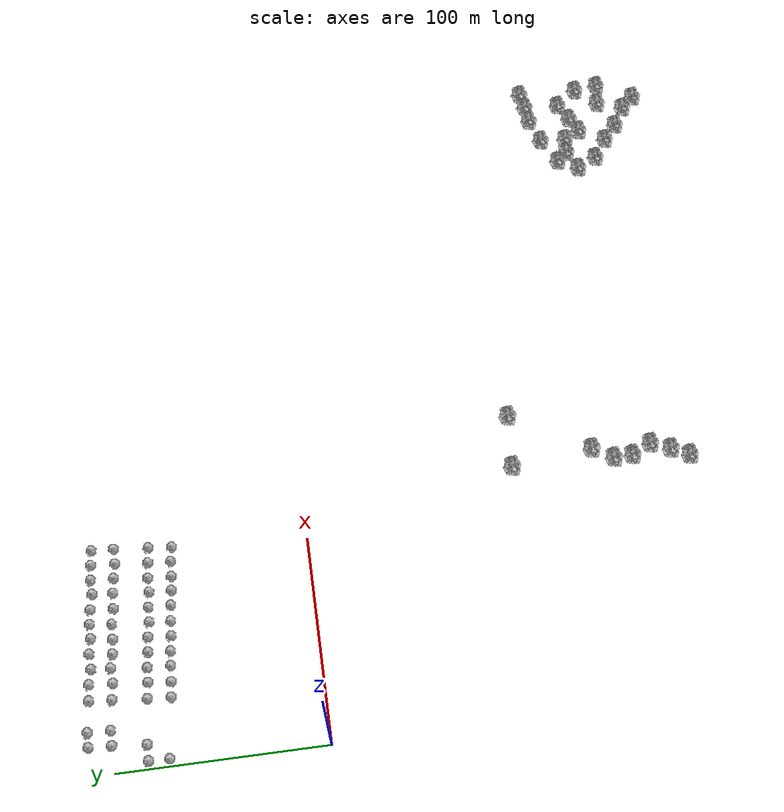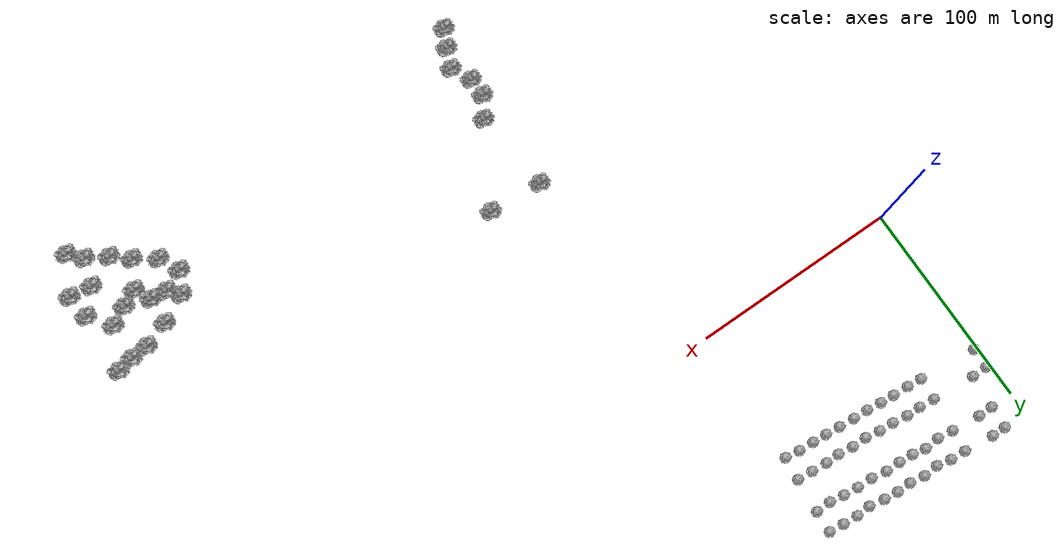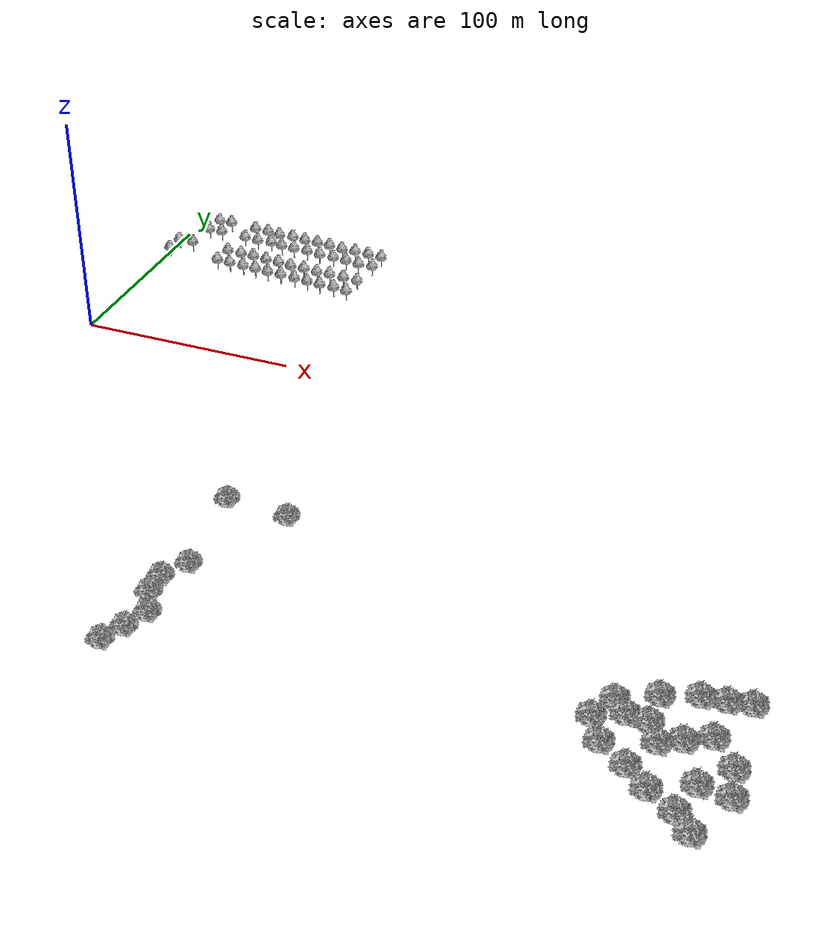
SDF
<sdf version="1.7">
 <world name="default">
  <model name="Tree_4_1">
   <static>1</static>
   <pose>303.763 -168.212 0 0 -0 0</pose>
   <link name="Tree_4">
    <visual name="Tree_4"><geometry><mesh><uri>model://Tree_4/Tree_4.dae</uri></mesh></geometry></visual>
    <collision name="Tree_4"><geometry><mesh><uri>model://Tree_4/Tree_4.dae</uri></mesh></geometry></collision>
   </link>
  </model>
  <model name="Tree_4_18">
   <static>1</static>
   <pose>320.533 -200.293 0 0 -0 0</pose>
   <link name="Tree_4">
    <visual name="Tree_4"><geometry><mesh><uri>model://Tree_4/Tree_4.dae</uri></mesh></geometry></visual>
    <collision name="Tree_4"><geometry><mesh><uri>model://Tree_4/Tree_4.dae</uri></mesh></geometry></collision>
   </link>
  </model>
  <model name="Tree_4_19">
   <static>1</static>
   <pose>314.685 -193.799 0 0 -0 0</pose>
   <link name="Tree_4">
    <visual name="Tree_4"><geometry><mesh><uri>model://Tree_4/Tree_4.dae</uri></mesh></geometry></visual>
    <collision name="Tree_4"><geometry><mesh><uri>model://Tree_4/Tree_4.dae</uri></mesh></geometry></collision>
   </link>
  </model>
  <model name="Tree_4_20">
   <static>1</static>
   <pose>304.752 -187.925 0 0 -0 0</pose>
   <link name="Tree_4">
    <visual name="Tree_4"><geometry><mesh><uri>model://Tree_4/Tree_4.dae</uri></mesh></geometry></visual>
    <collision name="Tree_4"><geometry><mesh><uri>model://Tree_4/Tree_4.dae</uri></mesh></geometry></collision>
   </link>
  </model>
  <model name="Tree_4_21">
   <static>1</static>
   <pose>296.725 -181.027 0 0 -0 0</pose>
   <link name="Tree_4">
    <visual name="Tree_4"><geometry><mesh><uri>model://Tree_4/Tree_4.dae</uri></mesh></geometry></visual>
    <collision name="Tree_4"><geometry><mesh><uri>model://Tree_4/Tree_4.dae</uri></mesh></geometry></collision>
   </link>
  </model>
  <model name="Tree_4_22">
   <static>1</static>
   <pose>286.621 -174.17 0 0 -0 0</pose>
   <link name="Tree_4">
    <visual name="Tree_4"><geometry><mesh><uri>model://Tree_4/Tree_4.dae</uri></mesh></geometry></visual>
    <collision name="Tree_4"><geometry><mesh><uri>model://Tree_4/Tree_4.dae</uri></mesh></geometry></collision>
   </link>
  </model>
  <model name="Tree_4_23">
   <static>1</static>
   <pose>281.567 -164.154 0 0 -0 0</pose>
   <link name="Tree_4">
    <visual name="Tree_4"><geometry><mesh><uri>model://Tree_4/Tree_4.dae</uri></mesh></geometry></visual>
    <collision name="Tree_4"><geometry><mesh><uri>model://Tree_4/Tree_4.dae</uri></mesh></geometry></collision>
   </link>
  </model>
  <model name="Tree_4_24">
   <static>1</static>
   <pose>286.978 -154.196 0 0 -0 0</pose>
   <link name="Tree_4">
    <visual name="Tree_4"><geometry><mesh><uri>model://Tree_4/Tree_4.dae</uri></mesh></geometry></visual>
    <collision name="Tree_4"><geometry><mesh><uri>model://Tree_4/Tree_4.dae</uri></mesh></geometry></collision>
   </link>
  </model>
  <model name="Tree_4_25">
   <static>1</static>
   <pose>291.629 -159.535 0 0 -0 0</pose>
   <link name="Tree_4">
    <visual name="Tree_4"><geometry><mesh><uri>model://Tree_4/Tree_4.dae</uri></mesh></geometry></visual>
    <collision name="Tree_4"><geometry><mesh><uri>model://Tree_4/Tree_4.dae</uri></mesh></geometry></collision>
   </link>
  </model>
  <model name="Tree_4_26">
   <static>1</static>
   <pose>299.491 -160.252 0 0 -0 0</pose>
   <link name="Tree_4">
    <visual name="Tree_4"><geometry><mesh><uri>model://Tree_4/Tree_4.dae</uri></mesh></geometry></visual>
    <collision name="Tree_4"><geometry><mesh><uri>model://Tree_4/Tree_4.dae</uri></mesh></geometry></collision>
   </link>
  </model>
  <model name="Tree_4_27">
   <static>1</static>
   <pose>319.004 -180.89 0 0 -0 0</pose>
   <link name="Tree_4">
    <visual name="Tree_4"><geometry><mesh><uri>model://Tree_4/Tree_4.dae</uri></mesh></geometry></visual>
    <collision name="Tree_4"><geometry><mesh><uri>model://Tree_4/Tree_4.dae</uri></mesh></geometry></collision>
   </link>
  </model>
  <model name="Tree_4_28">
   <static>1</static>
   <pose>329.831 -182.325 0 0 -0 0</pose>
   <link name="Tree_4">
    <visual name="Tree_4"><geometry><mesh><uri>model://Tree_4/Tree_4.dae</uri></mesh></geometry></visual>
    <collision name="Tree_4"><geometry><mesh><uri>model://Tree_4/Tree_4.dae</uri></mesh></geometry></collision>
   </link>
  </model>
  <model name="Tree_4_37">
   <static>1</static>
   <pose>328.472 -170.382 0 0 -0 0</pose>
   <link name="Tree_4">
    <visual name="Tree_4"><geometry><mesh><uri>model://Tree_4/Tree_4.dae</uri></mesh></geometry></visual>
    <collision name="Tree_4"><geometry><mesh><uri>model://Tree_4/Tree_4.dae</uri></mesh></geometry></collision>
   </link>
  </model>
  <model name="Tree_4_38">
   <static>1</static>
   <pose>311.502 -164.329 0 0 -0 0</pose>
   <link name="Tree_4">
    <visual name="Tree_4"><geometry><mesh><uri>model://Tree_4/Tree_4.dae</uri></mesh></geometry></visual>
    <collision name="Tree_4"><geometry><mesh><uri>model://Tree_4/Tree_4.dae</uri></mesh></geometry></collision>
   </link>
  </model>
  <model name="Tree_4_39">
   <static>1</static>
   <pose>320.336 -159.705 0 0 -0 0</pose>
   <link name="Tree_4">
    <visual name="Tree_4"><geometry><mesh><uri>model://Tree_4/Tree_4.dae</uri></mesh></geometry></visual>
    <collision name="Tree_4"><geometry><mesh><uri>model://Tree_4/Tree_4.dae</uri></mesh></geometry></collision>
   </link>
  </model>
  <model name="Tree_4_47">
   <static>1</static>
   <pose>329.545 -140.66 0 0 -0 0</pose>
   <link name="Tree_4">
    <visual name="Tree_4"><geometry><mesh><uri>model://Tree_4/Tree_4.dae</uri></mesh></geometry></visual>
    <collision name="Tree_4"><geometry><mesh><uri>model://Tree_4/Tree_4.dae</uri></mesh></geometry></collision>
   </link>
  </model>
  <model name="Tree_4_48">
   <static>1</static>
   <pose>321.452 -142.168 0 0 -0 0</pose>
   <link name="Tree_4">
    <visual name="Tree_4"><geometry><mesh><uri>model://Tree_4/Tree_4.dae</uri></mesh></geometry></visual>
    <collision name="Tree_4"><geometry><mesh><uri>model://Tree_4/Tree_4.dae</uri></mesh></geometry></collision>
   </link>
  </model>
  <model name="Tree_4_49">
   <static>1</static>
   <pose>312.922 -142.984 0 0 -0 0</pose>
   <link name="Tree_4">
    <visual name="Tree_4"><geometry><mesh><uri>model://Tree_4/Tree_4.dae</uri></mesh></geometry></visual>
    <collision name="Tree_4"><geometry><mesh><uri>model://Tree_4/Tree_4.dae</uri></mesh></geometry></collision>
   </link>
  </model>
  <model name="Tree_4_50">
   <static>1</static>
   <pose>300.359 -147.283 0 0 -0 0</pose>
   <link name="Tree_4">
    <visual name="Tree_4"><geometry><mesh><uri>model://Tree_4/Tree_4.dae</uri></mesh></geometry></visual>
    <collision name="Tree_4"><geometry><mesh><uri>model://Tree_4/Tree_4.dae</uri></mesh></geometry></collision>
   </link>
  </model>
  <model name="Tree_4_98">
   <static>1</static>
   <pose>121.592 -103.111 0 0 -0 0</pose>
   <link name="Tree_4">
    <visual name="Tree_4"><geometry><mesh><uri>model://Tree_4/Tree_4.dae</uri></mesh></geometry></visual>
    <collision name="Tree_4"><geometry><mesh><uri>model://Tree_4/Tree_4.dae</uri></mesh></geometry></collision>
   </link>
  </model>
  <model name="Tree_4_99">
   <static>1</static>
   <pose>147.819 -105.009 0 0 -0 0</pose>
   <link name="Tree_4">
    <visual name="Tree_4"><geometry><mesh><uri>model://Tree_4/Tree_4.dae</uri></mesh></geometry></visual>
    <collision name="Tree_4"><geometry><mesh><uri>model://Tree_4/Tree_4.dae</uri></mesh></geometry></collision>
   </link>
  </model>
  <model name="Tree_4_100">
   <static>1</static>
   <pose>125.68 -143.212 0 0 -0 0</pose>
   <link name="Tree_4">
    <visual name="Tree_4"><geometry><mesh><uri>model://Tree_4/Tree_4.dae</uri></mesh></geometry></visual>
    <collision name="Tree_4"><geometry><mesh><uri>model://Tree_4/Tree_4.dae</uri></mesh></geometry></collision>
   </link>
  </model>
  <model name="Tree_4_101">
   <static>1</static>
   <pose>119.52 -153.147 0 0 -0 0</pose>
   <link name="Tree_4">
    <visual name="Tree_4"><geometry><mesh><uri>model://Tree_4/Tree_4.dae</uri></mesh></geometry></visual>
    <collision name="Tree_4"><geometry><mesh><uri>model://Tree_4/Tree_4.dae</uri></mesh></geometry></collision>
   </link>
  </model>
  <model name="Tree_4_102">
   <static>1</static>
   <pose>119.68 -162.425 0 0 -0 0</pose>
   <link name="Tree_4">
    <visual name="Tree_4"><geometry><mesh><uri>model://Tree_4/Tree_4.dae</uri></mesh></geometry></visual>
    <collision name="Tree_4"><geometry><mesh><uri>model://Tree_4/Tree_4.dae</uri></mesh></geometry></collision>
   </link>
  </model>
  <model name="Tree_4_103">
   <static>1</static>
   <pose>124.479 -172.138 0 0 -0 0</pose>
   <link name="Tree_4">
    <visual name="Tree_4"><geometry><mesh><uri>model://Tree_4/Tree_4.dae</uri></mesh></geometry></visual>
    <collision name="Tree_4"><geometry><mesh><uri>model://Tree_4/Tree_4.dae</uri></mesh></geometry></collision>
   </link>
  </model>
  <model name="Tree_4_104">
   <static>1</static>
   <pose>120.503 -181.632 0 0 -0 0</pose>
   <link name="Tree_4">
    <visual name="Tree_4"><geometry><mesh><uri>model://Tree_4/Tree_4.dae</uri></mesh></geometry></visual>
    <collision name="Tree_4"><geometry><mesh><uri>model://Tree_4/Tree_4.dae</uri></mesh></geometry></collision>
   </link>
  </model>
  <model name="Tree_4_105">
   <static>1</static>
   <pose>116.148 -190.289 0 0 -0 0</pose>
   <link name="Tree_4">
    <visual name="Tree_4"><geometry><mesh><uri>model://Tree_4/Tree_4.dae</uri></mesh></geometry></visual>
    <collision name="Tree_4"><geometry><mesh><uri>model://Tree_4/Tree_4.dae</uri></mesh></geometry></collision>
   </link>
  </model>
  <model name="Tree_3">
   <static>1</static>
   <pose>103.904 76.5176 0 0 -0 0</pose>
   <link name="Tree_3">
    <visual name="Tree_3"><geometry><mesh><uri>model://Tree_3/Tree.dae</uri></mesh></geometry></visual>
    <collision name="Tree_3"><geometry><mesh><uri>model://Tree_3/Tree.dae</uri></mesh></geometry></collision>
   </link>
  </model>
  <model name="Tree_3_0">
   <static>1</static>
   <pose>106.015 103.578 0 0 -0 0</pose>
   <link name="Tree_3">
    <visual name="Tree_3"><geometry><mesh><uri>model://Tree_3/Tree.dae</uri></mesh></geometry></visual>
    <collision name="Tree_3"><geometry><mesh><uri>model://Tree_3/Tree.dae</uri></mesh></geometry></collision>
   </link>
  </model>
  <model name="Tree_3_1">
   <static>1</static>
   <pose>98.8284 104.281 0 0 -0 0</pose>
   <link name="Tree_3">
    <visual name="Tree_3"><geometry><mesh><uri>model://Tree_3/Tree.dae</uri></mesh></geometry></visual>
    <collision name="Tree_3"><geometry><mesh><uri>model://Tree_3/Tree.dae</uri></mesh></geometry></collision>
   </link>
  </model>
  <model name="Tree_3_2">
   <static>1</static>
   <pose>91.4631 104.847 0 0 -0 0</pose>
   <link name="Tree_3">
    <visual name="Tree_3"><geometry><mesh><uri>model://Tree_3/Tree.dae</uri></mesh></geometry></visual>
    <collision name="Tree_3"><geometry><mesh><uri>model://Tree_3/Tree.dae</uri></mesh></geometry></collision>
   </link>
  </model>
  <model name="Tree_3_3">
   <static>1</static>
   <pose>84.5231 104.557 0 0 -0 0</pose>
   <link name="Tree_3">
    <visual name="Tree_3"><geometry><mesh><uri>model://Tree_3/Tree.dae</uri></mesh></geometry></visual>
    <collision name="Tree_3"><geometry><mesh><uri>model://Tree_3/Tree.dae</uri></mesh></geometry></collision>
   </link>
  </model>
  <model name="Tree_3_4">
   <static>1</static>
   <pose>77.0649 105.943 0 0 -0 0</pose>
   <link name="Tree_3">
    <visual name="Tree_3"><geometry><mesh><uri>model://Tree_3/Tree.dae</uri></mesh></geometry></visual>
    <collision name="Tree_3"><geometry><mesh><uri>model://Tree_3/Tree.dae</uri></mesh></geometry></collision>
   </link>
  </model>
  <model name="Tree_3_5">
   <static>1</static>
   <pose>70.0885 106.647 0 0 -0 0</pose>
   <link name="Tree_3">
    <visual name="Tree_3"><geometry><mesh><uri>model://Tree_3/Tree.dae</uri></mesh></geometry></visual>
    <collision name="Tree_3"><geometry><mesh><uri>model://Tree_3/Tree.dae</uri></mesh></geometry></collision>
   </link>
  </model>
  <model name="Tree_3_6">
   <static>1</static>
   <pose>63.1871 106.644 0 0 -0 0</pose>
   <link name="Tree_3">
    <visual name="Tree_3"><geometry><mesh><uri>model://Tree_3/Tree.dae</uri></mesh></geometry></visual>
    <collision name="Tree_3"><geometry><mesh><uri>model://Tree_3/Tree.dae</uri></mesh></geometry></collision>
   </link>
  </model>
  <model name="Tree_3_7">
   <static>1</static>
   <pose>55.9134 107.786 0 0 -0 0</pose>
   <link name="Tree_3">
    <visual name="Tree_3"><geometry><mesh><uri>model://Tree_3/Tree.dae</uri></mesh></geometry></visual>
    <collision name="Tree_3"><geometry><mesh><uri>model://Tree_3/Tree.dae</uri></mesh></geometry></collision>
   </link>
  </model>
  <model name="Tree_3_8">
   <static>1</static>
   <pose>48.6147 107.339 0 0 -0 0</pose>
   <link name="Tree_3">
    <visual name="Tree_3"><geometry><mesh><uri>model://Tree_3/Tree.dae</uri></mesh></geometry></visual>
    <collision name="Tree_3"><geometry><mesh><uri>model://Tree_3/Tree.dae</uri></mesh></geometry></collision>
   </link>
  </model>
  <model name="Tree_3_9">
   <static>1</static>
   <pose>41.5592 108.756 0 0 -0 0</pose>
   <link name="Tree_3">
    <visual name="Tree_3"><geometry><mesh><uri>model://Tree_3/Tree.dae</uri></mesh></geometry></visual>
    <collision name="Tree_3"><geometry><mesh><uri>model://Tree_3/Tree.dae</uri></mesh></geometry></collision>
   </link>
  </model>
  <model name="Tree_3_10">
   <static>1</static>
   <pose>34.1005 109.277 0 0 -0 0</pose>
   <link name="Tree_3">
    <visual name="Tree_3"><geometry><mesh><uri>model://Tree_3/Tree.dae</uri></mesh></geometry></visual>
    <collision name="Tree_3"><geometry><mesh><uri>model://Tree_3/Tree.dae</uri></mesh></geometry></collision>
   </link>
  </model>
  <model name="Tree_3_11">
   <static>1</static>
   <pose>19.527 110.947 0 0 -0 0</pose>
   <link name="Tree_3">
    <visual name="Tree_3"><geometry><mesh><uri>model://Tree_3/Tree.dae</uri></mesh></geometry></visual>
    <collision name="Tree_3"><geometry><mesh><uri>model://Tree_3/Tree.dae</uri></mesh></geometry></collision>
   </link>
  </model>
  <model name="Tree_3_12">
   <static>1</static>
   <pose>12.7802 110.975 0 0 -0 0</pose>
   <link name="Tree_3">
    <visual name="Tree_3"><geometry><mesh><uri>model://Tree_3/Tree.dae</uri></mesh></geometry></visual>
    <collision name="Tree_3"><geometry><mesh><uri>model://Tree_3/Tree.dae</uri></mesh></geometry></collision>
   </link>
  </model>
  <model name="Tree_3_13">
   <static>1</static>
   <pose>105.354 92.9941 0 0 -0 0</pose>
   <link name="Tree_3">
    <visual name="Tree_3"><geometry><mesh><uri>model://Tree_3/Tree.dae</uri></mesh></geometry></visual>
    <collision name="Tree_3"><geometry><mesh><uri>model://Tree_3/Tree.dae</uri></mesh></geometry></collision>
   </link>
  </model>
  <model name="Tree_3_14">
   <static>1</static>
   <pose>90.9665 93.9569 0 0 -0 0</pose>
   <link name="Tree_3">
    <visual name="Tree_3"><geometry><mesh><uri>model://Tree_3/Tree.dae</uri></mesh></geometry></visual>
    <collision name="Tree_3"><geometry><mesh><uri>model://Tree_3/Tree.dae</uri></mesh></geometry></collision>
   </link>
  </model>
  <model name="Tree_3_15">
   <static>1</static>
   <pose>83.7586 94.7656 0 0 -0 0</pose>
   <link name="Tree_3">
    <visual name="Tree_3"><geometry><mesh><uri>model://Tree_3/Tree.dae</uri></mesh></geometry></visual>
    <collision name="Tree_3"><geometry><mesh><uri>model://Tree_3/Tree.dae</uri></mesh></geometry></collision>
   </link>
  </model>
  <model name="Tree_3_16">
   <static>1</static>
   <pose>76.1962 95.0236 0 0 -0 0</pose>
   <link name="Tree_3">
    <visual name="Tree_3"><geometry><mesh><uri>model://Tree_3/Tree.dae</uri></mesh></geometry></visual>
    <collision name="Tree_3"><geometry><mesh><uri>model://Tree_3/Tree.dae</uri></mesh></geometry></collision>
   </link>
  </model>
  <model name="Tree_3_17">
   <static>1</static>
   <pose>68.776 96.3488 0 0 -0 0</pose>
   <link name="Tree_3">
    <visual name="Tree_3"><geometry><mesh><uri>model://Tree_3/Tree.dae</uri></mesh></geometry></visual>
    <collision name="Tree_3"><geometry><mesh><uri>model://Tree_3/Tree.dae</uri></mesh></geometry></collision>
   </link>
  </model>
  <model name="Tree_3_18">
   <static>1</static>
   <pose>61.549 96.4073 0 0 -0 0</pose>
   <link name="Tree_3">
    <visual name="Tree_3"><geometry><mesh><uri>model://Tree_3/Tree.dae</uri></mesh></geometry></visual>
    <collision name="Tree_3"><geometry><mesh><uri>model://Tree_3/Tree.dae</uri></mesh></geometry></collision>
   </link>
  </model>
  <model name="Tree_3_19">
   <static>1</static>
   <pose>48.0586 98.2114 0 0 -0 0</pose>
   <link name="Tree_3">
    <visual name="Tree_3"><geometry><mesh><uri>model://Tree_3/Tree.dae</uri></mesh></geometry></visual>
    <collision name="Tree_3"><geometry><mesh><uri>model://Tree_3/Tree.dae</uri></mesh></geometry></collision>
   </link>
  </model>
  <model name="Tree_3_20">
   <static>1</static>
   <pose>54.5828 96.9389 0 0 -0 0</pose>
   <link name="Tree_3">
    <visual name="Tree_3"><geometry><mesh><uri>model://Tree_3/Tree.dae</uri></mesh></geometry></visual>
    <collision name="Tree_3"><geometry><mesh><uri>model://Tree_3/Tree.dae</uri></mesh></geometry></collision>
   </link>
  </model>
  <model name="Tree_3_21">
   <static>1</static>
   <pose>33.1888 98.7249 0 0 -0 0</pose>
   <link name="Tree_3">
    <visual name="Tree_3"><geometry><mesh><uri>model://Tree_3/Tree.dae</uri></mesh></geometry></visual>
    <collision name="Tree_3"><geometry><mesh><uri>model://Tree_3/Tree.dae</uri></mesh></geometry></collision>
   </link>
  </model>
  <model name="Tree_3_22">
   <static>1</static>
   <pose>98.0241 92.8539 0 0 -0 0</pose>
   <link name="Tree_3">
    <visual name="Tree_3"><geometry><mesh><uri>model://Tree_3/Tree.dae</uri></mesh></geometry></visual>
    <collision name="Tree_3"><geometry><mesh><uri>model://Tree_3/Tree.dae</uri></mesh></geometry></collision>
   </link>
  </model>
  <model name="Tree_3_23">
   <static>1</static>
   <pose>40.764 97.6875 0 0 -0 0</pose>
   <link name="Tree_3">
    <visual name="Tree_3"><geometry><mesh><uri>model://Tree_3/Tree.dae</uri></mesh></geometry></visual>
    <collision name="Tree_3"><geometry><mesh><uri>model://Tree_3/Tree.dae</uri></mesh></geometry></collision>
   </link>
  </model>
  <model name="Tree_3_24">
   <static>1</static>
   <pose>96.492 77.1836 0 0 -0 0</pose>
   <link name="Tree_3">
    <visual name="Tree_3"><geometry><mesh><uri>model://Tree_3/Tree.dae</uri></mesh></geometry></visual>
    <collision name="Tree_3"><geometry><mesh><uri>model://Tree_3/Tree.dae</uri></mesh></geometry></collision>
   </link>
  </model>
  <model name="Tree_3_25">
   <static>1</static>
   <pose>88.86 77.8148 0 0 -0 0</pose>
   <link name="Tree_3">
    <visual name="Tree_3"><geometry><mesh><uri>model://Tree_3/Tree.dae</uri></mesh></geometry></visual>
    <collision name="Tree_3"><geometry><mesh><uri>model://Tree_3/Tree.dae</uri></mesh></geometry></collision>
   </link>
  </model>
  <model name="Tree_3_26">
   <static>1</static>
   <pose>82.1329 77.7116 0 0 -0 0</pose>
   <link name="Tree_3">
    <visual name="Tree_3"><geometry><mesh><uri>model://Tree_3/Tree.dae</uri></mesh></geometry></visual>
    <collision name="Tree_3"><geometry><mesh><uri>model://Tree_3/Tree.dae</uri></mesh></geometry></collision>
   </link>
  </model>
  <model name="Tree_3_27">
   <static>1</static>
   <pose>74.7385 78.6931 0 0 -0 0</pose>
   <link name="Tree_3">
    <visual name="Tree_3"><geometry><mesh><uri>model://Tree_3/Tree.dae</uri></mesh></geometry></visual>
    <collision name="Tree_3"><geometry><mesh><uri>model://Tree_3/Tree.dae</uri></mesh></geometry></collision>
   </link>
  </model>
  <model name="Tree_3_28">
   <static>1</static>
   <pose>67.5703 78.7199 0 0 -0 0</pose>
   <link name="Tree_3">
    <visual name="Tree_3"><geometry><mesh><uri>model://Tree_3/Tree.dae</uri></mesh></geometry></visual>
    <collision name="Tree_3"><geometry><mesh><uri>model://Tree_3/Tree.dae</uri></mesh></geometry></collision>
   </link>
  </model>
  <model name="Tree_3_29">
   <static>1</static>
   <pose>60.4263 79.9785 0 0 -0 0</pose>
   <link name="Tree_3">
    <visual name="Tree_3"><geometry><mesh><uri>model://Tree_3/Tree.dae</uri></mesh></geometry></visual>
    <collision name="Tree_3"><geometry><mesh><uri>model://Tree_3/Tree.dae</uri></mesh></geometry></collision>
   </link>
  </model>
  <model name="Tree_3_30">
   <static>1</static>
   <pose>53.3622 80.383 0 0 -0 0</pose>
   <link name="Tree_3">
    <visual name="Tree_3"><geometry><mesh><uri>model://Tree_3/Tree.dae</uri></mesh></geometry></visual>
    <collision name="Tree_3"><geometry><mesh><uri>model://Tree_3/Tree.dae</uri></mesh></geometry></collision>
   </link>
  </model>
  <model name="Tree_3_31">
   <static>1</static>
   <pose>46.0341 81.4692 0 0 -0 0</pose>
   <link name="Tree_3">
    <visual name="Tree_3"><geometry><mesh><uri>model://Tree_3/Tree.dae</uri></mesh></geometry></visual>
    <collision name="Tree_3"><geometry><mesh><uri>model://Tree_3/Tree.dae</uri></mesh></geometry></collision>
   </link>
  </model>
  <model name="Tree_3_32">
   <static>1</static>
   <pose>39.1113 81.6452 0 0 -0 0</pose>
   <link name="Tree_3">
    <visual name="Tree_3"><geometry><mesh><uri>model://Tree_3/Tree.dae</uri></mesh></geometry></visual>
    <collision name="Tree_3"><geometry><mesh><uri>model://Tree_3/Tree.dae</uri></mesh></geometry></collision>
   </link>
  </model>
  <model name="Tree_3_33">
   <static>1</static>
   <pose>31.5404 82.3543 0 0 -0 0</pose>
   <link name="Tree_3">
    <visual name="Tree_3"><geometry><mesh><uri>model://Tree_3/Tree.dae</uri></mesh></geometry></visual>
    <collision name="Tree_3"><geometry><mesh><uri>model://Tree_3/Tree.dae</uri></mesh></geometry></collision>
   </link>
  </model>
  <model name="Tree_3_34">
   <static>1</static>
   <pose>102.702 65.2936 0 0 -0 0</pose>
   <link name="Tree_3">
    <visual name="Tree_3"><geometry><mesh><uri>model://Tree_3/Tree.dae</uri></mesh></geometry></visual>
    <collision name="Tree_3"><geometry><mesh><uri>model://Tree_3/Tree.dae</uri></mesh></geometry></collision>
   </link>
  </model>
  <model name="Tree_3_35">
   <static>1</static>
   <pose>95.6971 66.3636 0 0 -0 0</pose>
   <link name="Tree_3">
    <visual name="Tree_3"><geometry><mesh><uri>model://Tree_3/Tree.dae</uri></mesh></geometry></visual>
    <collision name="Tree_3"><geometry><mesh><uri>model://Tree_3/Tree.dae</uri></mesh></geometry></collision>
   </link>
  </model>
  <model name="Tree_3_36">
   <static>1</static>
   <pose>88.3012 66.7394 0 0 -0 0</pose>
   <link name="Tree_3">
    <visual name="Tree_3"><geometry><mesh><uri>model://Tree_3/Tree.dae</uri></mesh></geometry></visual>
    <collision name="Tree_3"><geometry><mesh><uri>model://Tree_3/Tree.dae</uri></mesh></geometry></collision>
   </link>
  </model>
  <model name="Tree_3_37">
   <static>1</static>
   <pose>81.4418 67.2828 0 0 -0 0</pose>
   <link name="Tree_3">
    <visual name="Tree_3"><geometry><mesh><uri>model://Tree_3/Tree.dae</uri></mesh></geometry></visual>
    <collision name="Tree_3"><geometry><mesh><uri>model://Tree_3/Tree.dae</uri></mesh></geometry></collision>
   </link>
  </model>
  <model name="Tree_3_38">
   <static>1</static>
   <pose>74.3454 68.0354 0 0 -0 0</pose>
   <link name="Tree_3">
    <visual name="Tree_3"><geometry><mesh><uri>model://Tree_3/Tree.dae</uri></mesh></geometry></visual>
    <collision name="Tree_3"><geometry><mesh><uri>model://Tree_3/Tree.dae</uri></mesh></geometry></collision>
   </link>
  </model>
  <model name="Tree_3_39">
   <static>1</static>
   <pose>66.6946 68.701 0 0 -0 0</pose>
   <link name="Tree_3">
    <visual name="Tree_3"><geometry><mesh><uri>model://Tree_3/Tree.dae</uri></mesh></geometry></visual>
    <collision name="Tree_3"><geometry><mesh><uri>model://Tree_3/Tree.dae</uri></mesh></geometry></collision>
   </link>
  </model>
  <model name="Tree_3_40">
   <static>1</static>
   <pose>59.5437 69.0483 0 0 -0 0</pose>
   <link name="Tree_3">
    <visual name="Tree_3"><geometry><mesh><uri>model://Tree_3/Tree.dae</uri></mesh></geometry></visual>
    <collision name="Tree_3"><geometry><mesh><uri>model://Tree_3/Tree.dae</uri></mesh></geometry></collision>
   </link>
  </model>
  <model name="Tree_3_41">
   <static>1</static>
   <pose>52.4207 69.9053 0 0 -0 0</pose>
   <link name="Tree_3">
    <visual name="Tree_3"><geometry><mesh><uri>model://Tree_3/Tree.dae</uri></mesh></geometry></visual>
    <collision name="Tree_3"><geometry><mesh><uri>model://Tree_3/Tree.dae</uri></mesh></geometry></collision>
   </link>
  </model>
  <model name="Tree_3_42">
   <static>1</static>
   <pose>45.5702 70.4298 0 0 -0 0</pose>
   <link name="Tree_3">
    <visual name="Tree_3"><geometry><mesh><uri>model://Tree_3/Tree.dae</uri></mesh></geometry></visual>
    <collision name="Tree_3"><geometry><mesh><uri>model://Tree_3/Tree.dae</uri></mesh></geometry></collision>
   </link>
  </model>
  <model name="Tree_3_43">
   <static>1</static>
   <pose>37.9776 70.9209 0 0 -0 0</pose>
   <link name="Tree_3">
    <visual name="Tree_3"><geometry><mesh><uri>model://Tree_3/Tree.dae</uri></mesh></geometry></visual>
    <collision name="Tree_3"><geometry><mesh><uri>model://Tree_3/Tree.dae</uri></mesh></geometry></collision>
   </link>
  </model>
  <model name="Tree_3_44">
   <static>1</static>
   <pose>30.8521 71.5271 0 0 -0 0</pose>
   <link name="Tree_3">
    <visual name="Tree_3"><geometry><mesh><uri>model://Tree_3/Tree.dae</uri></mesh></geometry></visual>
    <collision name="Tree_3"><geometry><mesh><uri>model://Tree_3/Tree.dae</uri></mesh></geometry></collision>
   </link>
  </model>
  <model name="Tree_3_45">
   <static>1</static>
   <pose>19.1881 100.163 0 0 -0 0</pose>
   <link name="Tree_3">
    <visual name="Tree_3"><geometry><mesh><uri>model://Tree_3/Tree.dae</uri></mesh></geometry></visual>
    <collision name="Tree_3"><geometry><mesh><uri>model://Tree_3/Tree.dae</uri></mesh></geometry></collision>
   </link>
  </model>
  <model name="Tree_3_46">
   <static>1</static>
   <pose>12.1655 100.218 0 0 -0 0</pose>
   <link name="Tree_3">
    <visual name="Tree_3"><geometry><mesh><uri>model://Tree_3/Tree.dae</uri></mesh></geometry></visual>
    <collision name="Tree_3"><geometry><mesh><uri>model://Tree_3/Tree.dae</uri></mesh></geometry></collision>
   </link>
  </model>
  <model name="Tree_3_47">
   <static>1</static>
   <pose>10.635 84.1716 0 0 -0 0</pose>
   <link name="Tree_3">
    <visual name="Tree_3"><geometry><mesh><uri>model://Tree_3/Tree.dae</uri></mesh></geometry></visual>
    <collision name="Tree_3"><geometry><mesh><uri>model://Tree_3/Tree.dae</uri></mesh></geometry></collision>
   </link>
  </model>
  <model name="Tree_3_48">
   <static>1</static>
   <pose>3.08822 84.1036 0 0 -0 0</pose>
   <link name="Tree_3">
    <visual name="Tree_3"><geometry><mesh><uri>model://Tree_3/Tree.dae</uri></mesh></geometry></visual>
    <collision name="Tree_3"><geometry><mesh><uri>model://Tree_3/Tree.dae</uri></mesh></geometry></collision>
   </link>
  </model>
  <model name="Tree_3_49">
   <static>1</static>
   <pose>2.76008 74.4516 0 0 -0 0</pose>
   <link name="Tree_3">
    <visual name="Tree_3"><geometry><mesh><uri>model://Tree_3/Tree.dae</uri></mesh></geometry></visual>
    <collision name="Tree_3"><geometry><mesh><uri>model://Tree_3/Tree.dae</uri></mesh></geometry></collision>
   </link>
  </model>
 </world>
</sdf>
